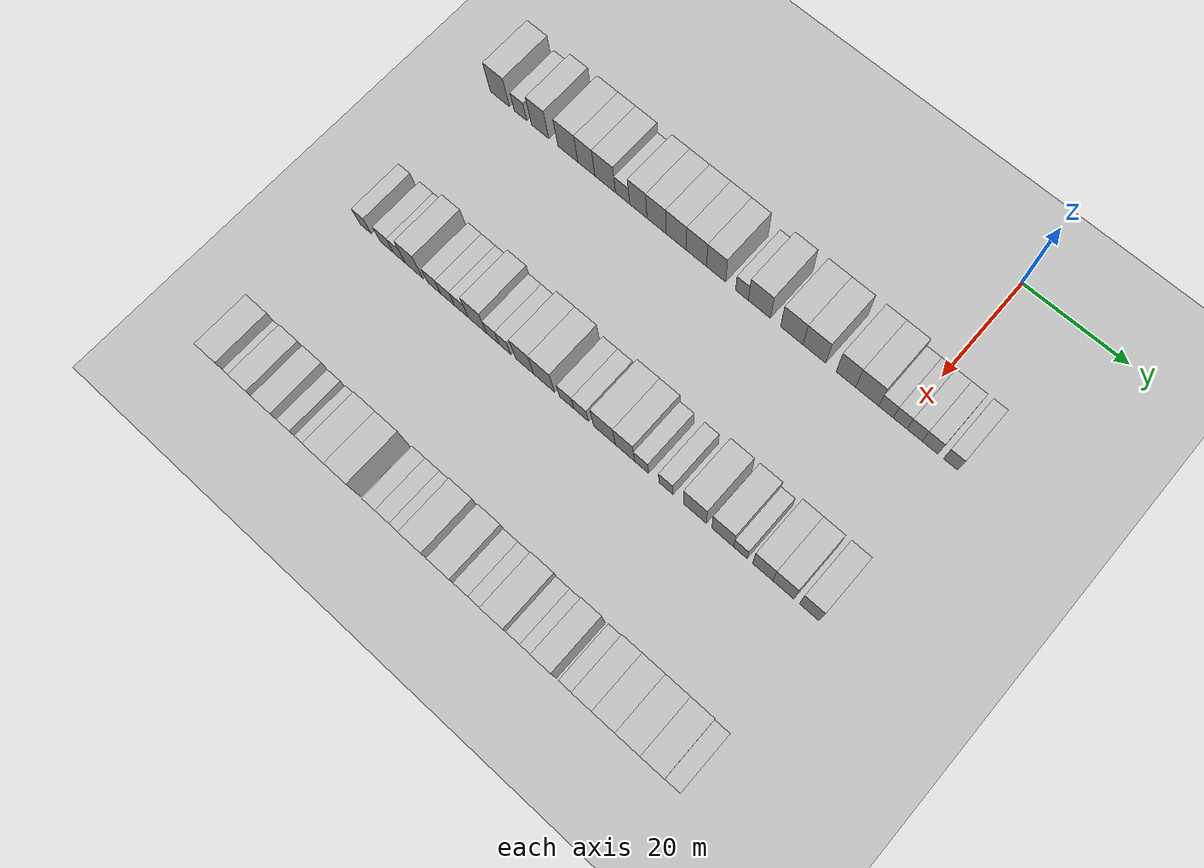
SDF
<sdf version="1.6">
 <world name="default">
  <include><name>ground_plane_1</name><uri>model://HANNAS_ground_plane</uri></include>
  <include>
   <name>ground_plane_2</name>
   <uri>model://HANNAS_ground_plane</uri>
   <pose>100 0 0  0 0 0</pose>
  </include>
  <model name="building_47">
   <static>1</static>
   <pose>25.0000 -81.6204 0 0.000000 0.000000 0.000000</pose>
   <link name="link">
    <pose>0 0 4.50 0 0 0</pose>
    <collision name="collision"><geometry><box><size>10.0000 4.2564 9.0000</size></box></geometry></collision>
    <visual name="visual">
     <cast_shadows>0</cast_shadows>
     <geometry><box><size>10.0000 4.2564 9.0000</size></box></geometry>
     <material>
      <script>
       <uri>model://HANNAS_wall/materials/scripts</uri>
       <uri>model://HANNAS_wall/materials/textures</uri>
       <name>vrc/HANNAS_wall</name>
      </script>
     </material>
    </visual>
   </link>
  </model>
  <model name="building_48">
   <static>1</static>
   <pose>25.0000 -77.0894 0 0.000000 0.000000 0.000000</pose>
   <link name="link">
    <pose>0 0 3.00 0 0 0</pose>
    <collision name="collision"><geometry><box><size>10.0000 2.8056 6.0000</size></box></geometry></collision>
    <visual name="visual">
     <cast_shadows>0</cast_shadows>
     <geometry><box><size>10.0000 2.8056 6.0000</size></box></geometry>
     <material>
      <script>
       <uri>model://HANNAS_wall/materials/scripts</uri>
       <uri>model://HANNAS_wall/materials/textures</uri>
       <name>vrc/HANNAS_wall</name>
      </script>
     </material>
    </visual>
   </link>
  </model>
  <model name="building_49">
   <static>1</static>
   <pose>25.0000 -72.8081 0 0.000000 0.000000 0.000000</pose>
   <link name="link">
    <pose>0 0 4.50 0 0 0</pose>
    <collision name="collision"><geometry><box><size>10.0000 3.7571 9.0000</size></box></geometry></collision>
    <visual name="visual">
     <cast_shadows>0</cast_shadows>
     <geometry><box><size>10.0000 3.7571 9.0000</size></box></geometry>
     <material>
      <script>
       <uri>model://HANNAS_wall/materials/scripts</uri>
       <uri>model://HANNAS_wall/materials/textures</uri>
       <name>vrc/HANNAS_wall</name>
      </script>
     </material>
    </visual>
   </link>
  </model>
  <model name="building_50">
   <static>1</static>
   <pose>25.0000 -66.7980 0 0.000000 0.000000 0.000000</pose>
   <link name="link">
    <pose>0 0 4.50 0 0 0</pose>
    <collision name="collision"><geometry><box><size>10.0000 4.2631 9.0000</size></box></geometry></collision>
    <visual name="visual">
     <cast_shadows>0</cast_shadows>
     <geometry><box><size>10.0000 4.2631 9.0000</size></box></geometry>
     <material>
      <script>
       <uri>model://HANNAS_wall/materials/scripts</uri>
       <uri>model://HANNAS_wall/materials/textures</uri>
       <name>vrc/HANNAS_wall</name>
      </script>
     </material>
    </visual>
   </link>
  </model>
  <model name="building_51">
   <static>1</static>
   <pose>25.0000 -62.8518 0 0.000000 0.000000 0.000000</pose>
   <link name="link">
    <pose>0 0 4.50 0 0 0</pose>
    <collision name="collision"><geometry><box><size>10.0000 3.6294 9.0000</size></box></geometry></collision>
    <visual name="visual">
     <cast_shadows>0</cast_shadows>
     <geometry><box><size>10.0000 3.6294 9.0000</size></box></geometry>
     <material>
      <script>
       <uri>model://HANNAS_wall/materials/scripts</uri>
       <uri>model://HANNAS_wall/materials/textures</uri>
       <name>vrc/HANNAS_wall</name>
      </script>
     </material>
    </visual>
   </link>
  </model>
  <model name="building_52">
   <static>1</static>
   <pose>25.0000 -58.8679 0 0.000000 0.000000 0.000000</pose>
   <link name="link">
    <pose>0 0 4.50 0 0 0</pose>
    <collision name="collision"><geometry><box><size>10.0000 4.3384 9.0000</size></box></geometry></collision>
    <visual name="visual">
     <cast_shadows>0</cast_shadows>
     <geometry><box><size>10.0000 4.3384 9.0000</size></box></geometry>
     <material>
      <script>
       <uri>model://HANNAS_wall/materials/scripts</uri>
       <uri>model://HANNAS_wall/materials/textures</uri>
       <name>vrc/HANNAS_wall</name>
      </script>
     </material>
    </visual>
   </link>
  </model>
  <model name="building_53">
   <static>1</static>
   <pose>25.0000 -55.2191 0 0.000000 0.000000 0.000000</pose>
   <link name="link">
    <pose>0 0 3.00 0 0 0</pose>
    <collision name="collision"><geometry><box><size>10.0000 2.9593 6.0000</size></box></geometry></collision>
    <visual name="visual">
     <cast_shadows>0</cast_shadows>
     <geometry><box><size>10.0000 2.9593 6.0000</size></box></geometry>
     <material>
      <script>
       <uri>model://HANNAS_wall/materials/scripts</uri>
       <uri>model://HANNAS_wall/materials/textures</uri>
       <name>vrc/HANNAS_wall</name>
      </script>
     </material>
    </visual>
   </link>
  </model>
  <model name="building_54">
   <static>1</static>
   <pose>25.0000 -51.9248 0 0.000000 0.000000 0.000000</pose>
   <link name="link">
    <pose>0 0 4.50 0 0 0</pose>
    <collision name="collision"><geometry><box><size>10.0000 3.6293 9.0000</size></box></geometry></collision>
    <visual name="visual">
     <cast_shadows>0</cast_shadows>
     <geometry><box><size>10.0000 3.6293 9.0000</size></box></geometry>
     <material>
      <script>
       <uri>model://HANNAS_wall/materials/scripts</uri>
       <uri>model://HANNAS_wall/materials/textures</uri>
       <name>vrc/HANNAS_wall</name>
      </script>
     </material>
    </visual>
   </link>
  </model>
  <model name="building_55">
   <static>1</static>
   <pose>25.0000 -48.1286 0 0.000000 0.000000 0.000000</pose>
   <link name="link">
    <pose>0 0 4.50 0 0 0</pose>
    <collision name="collision"><geometry><box><size>10.0000 3.9632 9.0000</size></box></geometry></collision>
    <visual name="visual">
     <cast_shadows>0</cast_shadows>
     <geometry><box><size>10.0000 3.9632 9.0000</size></box></geometry>
     <material>
      <script>
       <uri>model://HANNAS_wall/materials/scripts</uri>
       <uri>model://HANNAS_wall/materials/textures</uri>
       <name>vrc/HANNAS_wall</name>
      </script>
     </material>
    </visual>
   </link>
  </model>
  <model name="building_56">
   <static>1</static>
   <pose>25.0000 -44.0574 0 0.000000 0.000000 0.000000</pose>
   <link name="link">
    <pose>0 0 4.50 0 0 0</pose>
    <collision name="collision"><geometry><box><size>10.0000 4.1792 9.0000</size></box></geometry></collision>
    <visual name="visual">
     <cast_shadows>0</cast_shadows>
     <geometry><box><size>10.0000 4.1792 9.0000</size></box></geometry>
     <material>
      <script>
       <uri>model://HANNAS_wall/materials/scripts</uri>
       <uri>model://HANNAS_wall/materials/textures</uri>
       <name>vrc/HANNAS_wall</name>
      </script>
     </material>
    </visual>
   </link>
  </model>
  <model name="building_57">
   <static>1</static>
   <pose>25.0000 -39.9187 0 0.000000 0.000000 0.000000</pose>
   <link name="link">
    <pose>0 0 4.50 0 0 0</pose>
    <collision name="collision"><geometry><box><size>10.0000 4.0983 9.0000</size></box></geometry></collision>
    <visual name="visual">
     <cast_shadows>0</cast_shadows>
     <geometry><box><size>10.0000 4.0983 9.0000</size></box></geometry>
     <material>
      <script>
       <uri>model://HANNAS_wall/materials/scripts</uri>
       <uri>model://HANNAS_wall/materials/textures</uri>
       <name>vrc/HANNAS_wall</name>
      </script>
     </material>
    </visual>
   </link>
  </model>
  <model name="building_58">
   <static>1</static>
   <pose>25.0000 -35.9599 0 0.000000 0.000000 0.000000</pose>
   <link name="link">
    <pose>0 0 4.50 0 0 0</pose>
    <collision name="collision"><geometry><box><size>10.0000 3.8193 9.0000</size></box></geometry></collision>
    <visual name="visual">
     <cast_shadows>0</cast_shadows>
     <geometry><box><size>10.0000 3.8193 9.0000</size></box></geometry>
     <material>
      <script>
       <uri>model://HANNAS_wall/materials/scripts</uri>
       <uri>model://HANNAS_wall/materials/textures</uri>
       <name>vrc/HANNAS_wall</name>
      </script>
     </material>
    </visual>
   </link>
  </model>
  <model name="building_59">
   <static>1</static>
   <pose>25.0000 -30.7808 0 0.000000 0.000000 0.000000</pose>
   <link name="link">
    <pose>0 0 3.00 0 0 0</pose>
    <collision name="collision"><geometry><box><size>10.0000 2.5389 6.0000</size></box></geometry></collision>
    <visual name="visual">
     <cast_shadows>0</cast_shadows>
     <geometry><box><size>10.0000 2.5389 6.0000</size></box></geometry>
     <material>
      <script>
       <uri>model://HANNAS_wall/materials/scripts</uri>
       <uri>model://HANNAS_wall/materials/textures</uri>
       <name>vrc/HANNAS_wall</name>
      </script>
     </material>
    </visual>
   </link>
  </model>
  <model name="building_60">
   <static>1</static>
   <pose>25.0000 -27.3280 0 0.000000 0.000000 0.000000</pose>
   <link name="link">
    <pose>0 0 4.50 0 0 0</pose>
    <collision name="collision"><geometry><box><size>10.0000 4.3667 9.0000</size></box></geometry></collision>
    <visual name="visual">
     <cast_shadows>0</cast_shadows>
     <geometry><box><size>10.0000 4.3667 9.0000</size></box></geometry>
     <material>
      <script>
       <uri>model://HANNAS_wall/materials/scripts</uri>
       <uri>model://HANNAS_wall/materials/textures</uri>
       <name>vrc/HANNAS_wall</name>
      </script>
     </material>
    </visual>
   </link>
  </model>
  <model name="building_61">
   <static>1</static>
   <pose>25.0000 -20.9555 0 0.000000 0.000000 0.000000</pose>
   <link name="link">
    <pose>0 0 4.50 0 0 0</pose>
    <collision name="collision"><geometry><box><size>10.0000 4.3783 9.0000</size></box></geometry></collision>
    <visual name="visual">
     <cast_shadows>0</cast_shadows>
     <geometry><box><size>10.0000 4.3783 9.0000</size></box></geometry>
     <material>
      <script>
       <uri>model://HANNAS_wall/materials/scripts</uri>
       <uri>model://HANNAS_wall/materials/textures</uri>
       <name>vrc/HANNAS_wall</name>
      </script>
     </material>
    </visual>
   </link>
  </model>
  <model name="building_62">
   <static>1</static>
   <pose>25.0000 -16.5582 0 0.000000 0.000000 0.000000</pose>
   <link name="link">
    <pose>0 0 4.50 0 0 0</pose>
    <collision name="collision"><geometry><box><size>10.0000 4.4162 9.0000</size></box></geometry></collision>
    <visual name="visual">
     <cast_shadows>0</cast_shadows>
     <geometry><box><size>10.0000 4.4162 9.0000</size></box></geometry>
     <material>
      <script>
       <uri>model://HANNAS_wall/materials/scripts</uri>
       <uri>model://HANNAS_wall/materials/textures</uri>
       <name>vrc/HANNAS_wall</name>
      </script>
     </material>
    </visual>
   </link>
  </model>
  <model name="building_63">
   <static>1</static>
   <pose>25.0000 -10.4904 0 0.000000 0.000000 0.000000</pose>
   <link name="link">
    <pose>0 0 4.50 0 0 0</pose>
    <collision name="collision"><geometry><box><size>10.0000 3.7194 9.0000</size></box></geometry></collision>
    <visual name="visual">
     <cast_shadows>0</cast_shadows>
     <geometry><box><size>10.0000 3.7194 9.0000</size></box></geometry>
     <material>
      <script>
       <uri>model://HANNAS_wall/materials/scripts</uri>
       <uri>model://HANNAS_wall/materials/textures</uri>
       <name>vrc/HANNAS_wall</name>
      </script>
     </material>
    </visual>
   </link>
  </model>
  <model name="building_64">
   <static>1</static>
   <pose>25.0000 -6.4388 0 0.000000 0.000000 0.000000</pose>
   <link name="link">
    <pose>0 0 4.50 0 0 0</pose>
    <collision name="collision"><geometry><box><size>10.0000 4.3837 9.0000</size></box></geometry></collision>
    <visual name="visual">
     <cast_shadows>0</cast_shadows>
     <geometry><box><size>10.0000 4.3837 9.0000</size></box></geometry>
     <material>
      <script>
       <uri>model://HANNAS_wall/materials/scripts</uri>
       <uri>model://HANNAS_wall/materials/textures</uri>
       <name>vrc/HANNAS_wall</name>
      </script>
     </material>
    </visual>
   </link>
  </model>
  <model name="building_65">
   <static>1</static>
   <pose>25.0000 -2.8826 0 0.000000 0.000000 0.000000</pose>
   <link name="link">
    <pose>0 0 3.00 0 0 0</pose>
    <collision name="collision"><geometry><box><size>10.0000 2.7288 6.0000</size></box></geometry></collision>
    <visual name="visual">
     <cast_shadows>0</cast_shadows>
     <geometry><box><size>10.0000 2.7288 6.0000</size></box></geometry>
     <material>
      <script>
       <uri>model://HANNAS_wall/materials/scripts</uri>
       <uri>model://HANNAS_wall/materials/textures</uri>
       <name>vrc/HANNAS_wall</name>
      </script>
     </material>
    </visual>
   </link>
  </model>
  <model name="building_66">
   <static>1</static>
   <pose>25.0000 -0.2152 0 0.000000 0.000000 0.000000</pose>
   <link name="link">
    <pose>0 0 3.00 0 0 0</pose>
    <collision name="collision"><geometry><box><size>10.0000 2.6060 6.0000</size></box></geometry></collision>
    <visual name="visual">
     <cast_shadows>0</cast_shadows>
     <geometry><box><size>10.0000 2.6060 6.0000</size></box></geometry>
     <material>
      <script>
       <uri>model://HANNAS_wall/materials/scripts</uri>
       <uri>model://HANNAS_wall/materials/textures</uri>
       <name>vrc/HANNAS_wall</name>
      </script>
     </material>
    </visual>
   </link>
  </model>
  <model name="building_67">
   <static>1</static>
   <pose>25.0000 2.5015 0 0.000000 0.000000 0.000000</pose>
   <link name="link">
    <pose>0 0 3.00 0 0 0</pose>
    <collision name="collision"><geometry><box><size>10.0000 2.8276 6.0000</size></box></geometry></collision>
    <visual name="visual">
     <cast_shadows>0</cast_shadows>
     <geometry><box><size>10.0000 2.8276 6.0000</size></box></geometry>
     <material>
      <script>
       <uri>model://HANNAS_wall/materials/scripts</uri>
       <uri>model://HANNAS_wall/materials/textures</uri>
       <name>vrc/HANNAS_wall</name>
      </script>
     </material>
    </visual>
   </link>
  </model>
  <model name="building_68">
   <static>1</static>
   <pose>25.0000 5.3743 0 0.000000 0.000000 0.000000</pose>
   <link name="link">
    <pose>0 0 3.00 0 0 0</pose>
    <collision name="collision"><geometry><box><size>10.0000 2.9180 6.0000</size></box></geometry></collision>
    <visual name="visual">
     <cast_shadows>0</cast_shadows>
     <geometry><box><size>10.0000 2.9180 6.0000</size></box></geometry>
     <material>
      <script>
       <uri>model://HANNAS_wall/materials/scripts</uri>
       <uri>model://HANNAS_wall/materials/textures</uri>
       <name>vrc/HANNAS_wall</name>
      </script>
     </material>
    </visual>
   </link>
  </model>
  <model name="building_69">
   <static>1</static>
   <pose>25.0000 9.1517 0 0.000000 0.000000 0.000000</pose>
   <link name="link">
    <pose>0 0 3.00 0 0 0</pose>
    <collision name="collision"><geometry><box><size>10.0000 2.6368 6.0000</size></box></geometry></collision>
    <visual name="visual">
     <cast_shadows>0</cast_shadows>
     <geometry><box><size>10.0000 2.6368 6.0000</size></box></geometry>
     <material>
      <script>
       <uri>model://HANNAS_wall/materials/scripts</uri>
       <uri>model://HANNAS_wall/materials/textures</uri>
       <name>vrc/HANNAS_wall</name>
      </script>
     </material>
    </visual>
   </link>
  </model>
  <model name="building_191">
   <static>1</static>
   <pose>55.0000 -81.5571 0 0.000000 0.000000 0.000000</pose>
   <link name="link">
    <pose>0 0 3.00 0 0 0</pose>
    <collision name="collision"><geometry><box><size>10.0000 2.5150 6.0000</size></box></geometry></collision>
    <visual name="visual">
     <cast_shadows>0</cast_shadows>
     <geometry><box><size>10.0000 2.5150 6.0000</size></box></geometry>
     <material>
      <script>
       <uri>model://HANNAS_wall/materials/scripts</uri>
       <uri>model://HANNAS_wall/materials/textures</uri>
       <name>vrc/HANNAS_wall</name>
      </script>
     </material>
    </visual>
   </link>
  </model>
  <model name="building_192">
   <static>1</static>
   <pose>55.0000 -76.8362 0 0.000000 0.000000 0.000000</pose>
   <link name="link">
    <pose>0 0 3.00 0 0 0</pose>
    <collision name="collision"><geometry><box><size>10.0000 2.9268 6.0000</size></box></geometry></collision>
    <visual name="visual">
     <cast_shadows>0</cast_shadows>
     <geometry><box><size>10.0000 2.9268 6.0000</size></box></geometry>
     <material>
      <script>
       <uri>model://HANNAS_wall/materials/scripts</uri>
       <uri>model://HANNAS_wall/materials/textures</uri>
       <name>vrc/HANNAS_wall</name>
      </script>
     </material>
    </visual>
   </link>
  </model>
  <model name="building_193">
   <static>1</static>
   <pose>55.0000 -74.0799 0 0.000000 0.000000 0.000000</pose>
   <link name="link">
    <pose>0 0 3.00 0 0 0</pose>
    <collision name="collision"><geometry><box><size>10.0000 2.5858 6.0000</size></box></geometry></collision>
    <visual name="visual">
     <cast_shadows>0</cast_shadows>
     <geometry><box><size>10.0000 2.5858 6.0000</size></box></geometry>
     <material>
      <script>
       <uri>model://HANNAS_wall/materials/scripts</uri>
       <uri>model://HANNAS_wall/materials/textures</uri>
       <name>vrc/HANNAS_wall</name>
      </script>
     </material>
    </visual>
   </link>
  </model>
  <model name="building_194">
   <static>1</static>
   <pose>55.0000 -70.9197 0 0.000000 0.000000 0.000000</pose>
   <link name="link">
    <pose>0 0 4.50 0 0 0</pose>
    <collision name="collision"><geometry><box><size>10.0000 3.7346 9.0000</size></box></geometry></collision>
    <visual name="visual">
     <cast_shadows>0</cast_shadows>
     <geometry><box><size>10.0000 3.7346 9.0000</size></box></geometry>
     <material>
      <script>
       <uri>model://HANNAS_wall/materials/scripts</uri>
       <uri>model://HANNAS_wall/materials/textures</uri>
       <name>vrc/HANNAS_wall</name>
      </script>
     </material>
    </visual>
   </link>
  </model>
  <model name="building_195">
   <static>1</static>
   <pose>55.0000 -66.6272 0 0.000000 0.000000 0.000000</pose>
   <link name="link">
    <pose>0 0 3.00 0 0 0</pose>
    <collision name="collision"><geometry><box><size>10.0000 2.8502 6.0000</size></box></geometry></collision>
    <visual name="visual">
     <cast_shadows>0</cast_shadows>
     <geometry><box><size>10.0000 2.8502 6.0000</size></box></geometry>
     <material>
      <script>
       <uri>model://HANNAS_wall/materials/scripts</uri>
       <uri>model://HANNAS_wall/materials/textures</uri>
       <name>vrc/HANNAS_wall</name>
      </script>
     </material>
    </visual>
   </link>
  </model>
  <model name="building_196">
   <static>1</static>
   <pose>55.0000 -63.7630 0 0.000000 0.000000 0.000000</pose>
   <link name="link">
    <pose>0 0 3.00 0 0 0</pose>
    <collision name="collision"><geometry><box><size>10.0000 2.8782 6.0000</size></box></geometry></collision>
    <visual name="visual">
     <cast_shadows>0</cast_shadows>
     <geometry><box><size>10.0000 2.8782 6.0000</size></box></geometry>
     <material>
      <script>
       <uri>model://HANNAS_wall/materials/scripts</uri>
       <uri>model://HANNAS_wall/materials/textures</uri>
       <name>vrc/HANNAS_wall</name>
      </script>
     </material>
    </visual>
   </link>
  </model>
  <model name="building_197">
   <static>1</static>
   <pose>55.0000 -60.8472 0 0.000000 0.000000 0.000000</pose>
   <link name="link">
    <pose>0 0 3.00 0 0 0</pose>
    <collision name="collision"><geometry><box><size>10.0000 2.9534 6.0000</size></box></geometry></collision>
    <visual name="visual">
     <cast_shadows>0</cast_shadows>
     <geometry><box><size>10.0000 2.9534 6.0000</size></box></geometry>
     <material>
      <script>
       <uri>model://HANNAS_wall/materials/scripts</uri>
       <uri>model://HANNAS_wall/materials/textures</uri>
       <name>vrc/HANNAS_wall</name>
      </script>
     </material>
    </visual>
   </link>
  </model>
  <model name="building_198">
   <static>1</static>
   <pose>55.0000 -57.4483 0 0.000000 0.000000 0.000000</pose>
   <link name="link">
    <pose>0 0 4.50 0 0 0</pose>
    <collision name="collision"><geometry><box><size>10.0000 3.8444 9.0000</size></box></geometry></collision>
    <visual name="visual">
     <cast_shadows>0</cast_shadows>
     <geometry><box><size>10.0000 3.8444 9.0000</size></box></geometry>
     <material>
      <script>
       <uri>model://HANNAS_wall/materials/scripts</uri>
       <uri>model://HANNAS_wall/materials/textures</uri>
       <name>vrc/HANNAS_wall</name>
      </script>
     </material>
    </visual>
   </link>
  </model>
  <model name="building_199">
   <static>1</static>
   <pose>55.0000 -54.2458 0 0.000000 0.000000 0.000000</pose>
   <link name="link">
    <pose>0 0 3.00 0 0 0</pose>
    <collision name="collision"><geometry><box><size>10.0000 2.5604 6.0000</size></box></geometry></collision>
    <visual name="visual">
     <cast_shadows>0</cast_shadows>
     <geometry><box><size>10.0000 2.5604 6.0000</size></box></geometry>
     <material>
      <script>
       <uri>model://HANNAS_wall/materials/scripts</uri>
       <uri>model://HANNAS_wall/materials/textures</uri>
       <name>vrc/HANNAS_wall</name>
      </script>
     </material>
    </visual>
   </link>
  </model>
  <model name="building_200">
   <static>1</static>
   <pose>55.0000 -51.7610 0 0.000000 0.000000 0.000000</pose>
   <link name="link">
    <pose>0 0 3.00 0 0 0</pose>
    <collision name="collision"><geometry><box><size>10.0000 2.4092 6.0000</size></box></geometry></collision>
    <visual name="visual">
     <cast_shadows>0</cast_shadows>
     <geometry><box><size>10.0000 2.4092 6.0000</size></box></geometry>
     <material>
      <script>
       <uri>model://HANNAS_wall/materials/scripts</uri>
       <uri>model://HANNAS_wall/materials/textures</uri>
       <name>vrc/HANNAS_wall</name>
      </script>
     </material>
    </visual>
   </link>
  </model>
  <model name="building_201">
   <static>1</static>
   <pose>55.0000 -47.7189 0 0.000000 0.000000 0.000000</pose>
   <link name="link">
    <pose>0 0 4.50 0 0 0</pose>
    <collision name="collision"><geometry><box><size>10.0000 3.6751 9.0000</size></box></geometry></collision>
    <visual name="visual">
     <cast_shadows>0</cast_shadows>
     <geometry><box><size>10.0000 3.6751 9.0000</size></box></geometry>
     <material>
      <script>
       <uri>model://HANNAS_wall/materials/scripts</uri>
       <uri>model://HANNAS_wall/materials/textures</uri>
       <name>vrc/HANNAS_wall</name>
      </script>
     </material>
    </visual>
   </link>
  </model>
  <model name="building_202">
   <static>1</static>
   <pose>55.0000 -43.7553 0 0.000000 0.000000 0.000000</pose>
   <link name="link">
    <pose>0 0 4.50 0 0 0</pose>
    <collision name="collision"><geometry><box><size>10.0000 4.2521 9.0000</size></box></geometry></collision>
    <visual name="visual">
     <cast_shadows>0</cast_shadows>
     <geometry><box><size>10.0000 4.2521 9.0000</size></box></geometry>
     <material>
      <script>
       <uri>model://HANNAS_wall/materials/scripts</uri>
       <uri>model://HANNAS_wall/materials/textures</uri>
       <name>vrc/HANNAS_wall</name>
      </script>
     </material>
    </visual>
   </link>
  </model>
  <model name="building_203">
   <static>1</static>
   <pose>55.0000 -39.1882 0 0.000000 0.000000 0.000000</pose>
   <link name="link">
    <pose>0 0 3.00 0 0 0</pose>
    <collision name="collision"><geometry><box><size>10.0000 2.8820 6.0000</size></box></geometry></collision>
    <visual name="visual">
     <cast_shadows>0</cast_shadows>
     <geometry><box><size>10.0000 2.8820 6.0000</size></box></geometry>
     <material>
      <script>
       <uri>model://HANNAS_wall/materials/scripts</uri>
       <uri>model://HANNAS_wall/materials/textures</uri>
       <name>vrc/HANNAS_wall</name>
      </script>
     </material>
    </visual>
   </link>
  </model>
  <model name="building_204">
   <static>1</static>
   <pose>55.0000 -36.2846 0 0.000000 0.000000 0.000000</pose>
   <link name="link">
    <pose>0 0 3.00 0 0 0</pose>
    <collision name="collision"><geometry><box><size>10.0000 2.9252 6.0000</size></box></geometry></collision>
    <visual name="visual">
     <cast_shadows>0</cast_shadows>
     <geometry><box><size>10.0000 2.9252 6.0000</size></box></geometry>
     <material>
      <script>
       <uri>model://HANNAS_wall/materials/scripts</uri>
       <uri>model://HANNAS_wall/materials/textures</uri>
       <name>vrc/HANNAS_wall</name>
      </script>
     </material>
    </visual>
   </link>
  </model>
  <model name="building_205">
   <static>1</static>
   <pose>55.0000 -31.6635 0 0.000000 0.000000 0.000000</pose>
   <link name="link">
    <pose>0 0 4.50 0 0 0</pose>
    <collision name="collision"><geometry><box><size>10.0000 4.3172 9.0000</size></box></geometry></collision>
    <visual name="visual">
     <cast_shadows>0</cast_shadows>
     <geometry><box><size>10.0000 4.3172 9.0000</size></box></geometry>
     <material>
      <script>
       <uri>model://HANNAS_wall/materials/scripts</uri>
       <uri>model://HANNAS_wall/materials/textures</uri>
       <name>vrc/HANNAS_wall</name>
      </script>
     </material>
    </visual>
   </link>
  </model>
  <model name="building_206">
   <static>1</static>
   <pose>55.0000 -27.6043 0 0.000000 0.000000 0.000000</pose>
   <link name="link">
    <pose>0 0 4.50 0 0 0</pose>
    <collision name="collision"><geometry><box><size>10.0000 3.8011 9.0000</size></box></geometry></collision>
    <visual name="visual">
     <cast_shadows>0</cast_shadows>
     <geometry><box><size>10.0000 3.8011 9.0000</size></box></geometry>
     <material>
      <script>
       <uri>model://HANNAS_wall/materials/scripts</uri>
       <uri>model://HANNAS_wall/materials/textures</uri>
       <name>vrc/HANNAS_wall</name>
      </script>
     </material>
    </visual>
   </link>
  </model>
  <model name="building_207">
   <static>1</static>
   <pose>55.0000 -24.3445 0 0.000000 0.000000 0.000000</pose>
   <link name="link">
    <pose>0 0 3.00 0 0 0</pose>
    <collision name="collision"><geometry><box><size>10.0000 2.7186 6.0000</size></box></geometry></collision>
    <visual name="visual">
     <cast_shadows>0</cast_shadows>
     <geometry><box><size>10.0000 2.7186 6.0000</size></box></geometry>
     <material>
      <script>
       <uri>model://HANNAS_wall/materials/scripts</uri>
       <uri>model://HANNAS_wall/materials/textures</uri>
       <name>vrc/HANNAS_wall</name>
      </script>
     </material>
    </visual>
   </link>
  </model>
  <model name="building_208">
   <static>1</static>
   <pose>55.0000 -19.6292 0 0.000000 0.000000 0.000000</pose>
   <link name="link">
    <pose>0 0 3.00 0 0 0</pose>
    <collision name="collision"><geometry><box><size>10.0000 2.7120 6.0000</size></box></geometry></collision>
    <visual name="visual">
     <cast_shadows>0</cast_shadows>
     <geometry><box><size>10.0000 2.7120 6.0000</size></box></geometry>
     <material>
      <script>
       <uri>model://HANNAS_wall/materials/scripts</uri>
       <uri>model://HANNAS_wall/materials/textures</uri>
       <name>vrc/HANNAS_wall</name>
      </script>
     </material>
    </visual>
   </link>
  </model>
  <model name="building_209">
   <static>1</static>
   <pose>55.0000 -14.0733 0 0.000000 0.000000 0.000000</pose>
   <link name="link">
    <pose>0 0 4.50 0 0 0</pose>
    <collision name="collision"><geometry><box><size>10.0000 4.3997 9.0000</size></box></geometry></collision>
    <visual name="visual">
     <cast_shadows>0</cast_shadows>
     <geometry><box><size>10.0000 4.3997 9.0000</size></box></geometry>
     <material>
      <script>
       <uri>model://HANNAS_wall/materials/scripts</uri>
       <uri>model://HANNAS_wall/materials/textures</uri>
       <name>vrc/HANNAS_wall</name>
      </script>
     </material>
    </visual>
   </link>
  </model>
  <model name="building_210">
   <static>1</static>
   <pose>55.0000 -8.8160 0 0.000000 0.000000 0.000000</pose>
   <link name="link">
    <pose>0 0 4.50 0 0 0</pose>
    <collision name="collision"><geometry><box><size>10.0000 4.1148 9.0000</size></box></geometry></collision>
    <visual name="visual">
     <cast_shadows>0</cast_shadows>
     <geometry><box><size>10.0000 4.1148 9.0000</size></box></geometry>
     <material>
      <script>
       <uri>model://HANNAS_wall/materials/scripts</uri>
       <uri>model://HANNAS_wall/materials/textures</uri>
       <name>vrc/HANNAS_wall</name>
      </script>
     </material>
    </visual>
   </link>
  </model>
  <model name="building_211">
   <static>1</static>
   <pose>55.0000 -5.4858 0 0.000000 0.000000 0.000000</pose>
   <link name="link">
    <pose>0 0 3.00 0 0 0</pose>
    <collision name="collision"><geometry><box><size>10.0000 2.5456 6.0000</size></box></geometry></collision>
    <visual name="visual">
     <cast_shadows>0</cast_shadows>
     <geometry><box><size>10.0000 2.5456 6.0000</size></box></geometry>
     <material>
      <script>
       <uri>model://HANNAS_wall/materials/scripts</uri>
       <uri>model://HANNAS_wall/materials/textures</uri>
       <name>vrc/HANNAS_wall</name>
      </script>
     </material>
    </visual>
   </link>
  </model>
  <model name="building_212">
   <static>1</static>
   <pose>55.0000 -1.3410 0 0.000000 0.000000 0.000000</pose>
   <link name="link">
    <pose>0 0 4.50 0 0 0</pose>
    <collision name="collision"><geometry><box><size>10.0000 3.7441 9.0000</size></box></geometry></collision>
    <visual name="visual">
     <cast_shadows>0</cast_shadows>
     <geometry><box><size>10.0000 3.7441 9.0000</size></box></geometry>
     <material>
      <script>
       <uri>model://HANNAS_wall/materials/scripts</uri>
       <uri>model://HANNAS_wall/materials/textures</uri>
       <name>vrc/HANNAS_wall</name>
      </script>
     </material>
    </visual>
   </link>
  </model>
  <model name="building_213">
   <static>1</static>
   <pose>55.0000 2.4802 0 0.000000 0.000000 0.000000</pose>
   <link name="link">
    <pose>0 0 4.50 0 0 0</pose>
    <collision name="collision"><geometry><box><size>10.0000 3.8981 9.0000</size></box></geometry></collision>
    <visual name="visual">
     <cast_shadows>0</cast_shadows>
     <geometry><box><size>10.0000 3.8981 9.0000</size></box></geometry>
     <material>
      <script>
       <uri>model://HANNAS_wall/materials/scripts</uri>
       <uri>model://HANNAS_wall/materials/textures</uri>
       <name>vrc/HANNAS_wall</name>
      </script>
     </material>
    </visual>
   </link>
  </model>
  <model name="building_214">
   <static>1</static>
   <pose>55.0000 7.2455 0 0.000000 0.000000 0.000000</pose>
   <link name="link">
    <pose>0 0 4.50 0 0 0</pose>
    <collision name="collision"><geometry><box><size>10.0000 3.6325 9.0000</size></box></geometry></collision>
    <visual name="visual">
     <cast_shadows>0</cast_shadows>
     <geometry><box><size>10.0000 3.6325 9.0000</size></box></geometry>
     <material>
      <script>
       <uri>model://HANNAS_wall/materials/scripts</uri>
       <uri>model://HANNAS_wall/materials/textures</uri>
       <name>vrc/HANNAS_wall</name>
      </script>
     </material>
    </visual>
   </link>
  </model>
  <model name="building_337">
   <static>1</static>
   <pose>85.0000 -80.7573 0 0.000000 0.000000 0.000000</pose>
   <link name="link">
    <pose>0 0 4.50 0 0 0</pose>
    <collision name="collision"><geometry><box><size>10.0000 4.3940 9.0000</size></box></geometry></collision>
    <visual name="visual">
     <cast_shadows>0</cast_shadows>
     <geometry><box><size>10.0000 4.3940 9.0000</size></box></geometry>
     <material>
      <script>
       <uri>model://HANNAS_wall/materials/scripts</uri>
       <uri>model://HANNAS_wall/materials/textures</uri>
       <name>vrc/HANNAS_wall</name>
      </script>
     </material>
    </visual>
   </link>
  </model>
  <model name="building_338">
   <static>1</static>
   <pose>85.0000 -77.2545 0 0.000000 0.000000 0.000000</pose>
   <link name="link">
    <pose>0 0 3.00 0 0 0</pose>
    <collision name="collision"><geometry><box><size>10.0000 2.6116 6.0000</size></box></geometry></collision>
    <visual name="visual">
     <cast_shadows>0</cast_shadows>
     <geometry><box><size>10.0000 2.6116 6.0000</size></box></geometry>
     <material>
      <script>
       <uri>model://HANNAS_wall/materials/scripts</uri>
       <uri>model://HANNAS_wall/materials/textures</uri>
       <name>vrc/HANNAS_wall</name>
      </script>
     </material>
    </visual>
   </link>
  </model>
  <model name="building_339">
   <static>1</static>
   <pose>85.0000 -74.0384 0 0.000000 0.000000 0.000000</pose>
   <link name="link">
    <pose>0 0 4.50 0 0 0</pose>
    <collision name="collision"><geometry><box><size>10.0000 3.8207 9.0000</size></box></geometry></collision>
    <visual name="visual">
     <cast_shadows>0</cast_shadows>
     <geometry><box><size>10.0000 3.8207 9.0000</size></box></geometry>
     <material>
      <script>
       <uri>model://HANNAS_wall/materials/scripts</uri>
       <uri>model://HANNAS_wall/materials/textures</uri>
       <name>vrc/HANNAS_wall</name>
      </script>
     </material>
    </visual>
   </link>
  </model>
  <model name="building_340">
   <static>1</static>
   <pose>85.0000 -69.1573 0 0.000000 0.000000 0.000000</pose>
   <link name="link">
    <pose>0 0 4.50 0 0 0</pose>
    <collision name="collision"><geometry><box><size>10.0000 3.9415 9.0000</size></box></geometry></collision>
    <visual name="visual">
     <cast_shadows>0</cast_shadows>
     <geometry><box><size>10.0000 3.9415 9.0000</size></box></geometry>
     <material>
      <script>
       <uri>model://HANNAS_wall/materials/scripts</uri>
       <uri>model://HANNAS_wall/materials/textures</uri>
       <name>vrc/HANNAS_wall</name>
      </script>
     </material>
    </visual>
   </link>
  </model>
  <model name="building_341">
   <static>1</static>
   <pose>85.0000 -65.8444 0 0.000000 0.000000 0.000000</pose>
   <link name="link">
    <pose>0 0 3.00 0 0 0</pose>
    <collision name="collision"><geometry><box><size>10.0000 2.6843 6.0000</size></box></geometry></collision>
    <visual name="visual">
     <cast_shadows>0</cast_shadows>
     <geometry><box><size>10.0000 2.6843 6.0000</size></box></geometry>
     <material>
      <script>
       <uri>model://HANNAS_wall/materials/scripts</uri>
       <uri>model://HANNAS_wall/materials/textures</uri>
       <name>vrc/HANNAS_wall</name>
      </script>
     </material>
    </visual>
   </link>
  </model>
  <model name="building_342">
   <static>1</static>
   <pose>85.0000 -62.0984 0 0.000000 0.000000 0.000000</pose>
   <link name="link">
    <pose>0 0 3.00 0 0 0</pose>
    <collision name="collision"><geometry><box><size>10.0000 2.8077 6.0000</size></box></geometry></collision>
    <visual name="visual">
     <cast_shadows>0</cast_shadows>
     <geometry><box><size>10.0000 2.8077 6.0000</size></box></geometry>
     <material>
      <script>
       <uri>model://HANNAS_wall/materials/scripts</uri>
       <uri>model://HANNAS_wall/materials/textures</uri>
       <name>vrc/HANNAS_wall</name>
      </script>
     </material>
    </visual>
   </link>
  </model>
  <model name="building_343">
   <static>1</static>
   <pose>85.0000 -58.5339 0 0.000000 0.000000 0.000000</pose>
   <link name="link">
    <pose>0 0 4.50 0 0 0</pose>
    <collision name="collision"><geometry><box><size>10.0000 4.3212 9.0000</size></box></geometry></collision>
    <visual name="visual">
     <cast_shadows>0</cast_shadows>
     <geometry><box><size>10.0000 4.3212 9.0000</size></box></geometry>
     <material>
      <script>
       <uri>model://HANNAS_wall/materials/scripts</uri>
       <uri>model://HANNAS_wall/materials/textures</uri>
       <name>vrc/HANNAS_wall</name>
      </script>
     </material>
    </visual>
   </link>
  </model>
  <model name="building_344">
   <static>1</static>
   <pose>85.0000 -54.1305 0 0.000000 0.000000 0.000000</pose>
   <link name="link">
    <pose>0 0 4.50 0 0 0</pose>
    <collision name="collision"><geometry><box><size>10.0000 4.4856 9.0000</size></box></geometry></collision>
    <visual name="visual">
     <cast_shadows>0</cast_shadows>
     <geometry><box><size>10.0000 4.4856 9.0000</size></box></geometry>
     <material>
      <script>
       <uri>model://HANNAS_wall/materials/scripts</uri>
       <uri>model://HANNAS_wall/materials/textures</uri>
       <name>vrc/HANNAS_wall</name>
      </script>
     </material>
    </visual>
   </link>
  </model>
  <model name="building_345">
   <static>1</static>
   <pose>85.0000 -48.5793 0 0.000000 0.000000 0.000000</pose>
   <link name="link">
    <pose>0 0 3.00 0 0 0</pose>
    <collision name="collision"><geometry><box><size>10.0000 2.6166 6.0000</size></box></geometry></collision>
    <visual name="visual">
     <cast_shadows>0</cast_shadows>
     <geometry><box><size>10.0000 2.6166 6.0000</size></box></geometry>
     <material>
      <script>
       <uri>model://HANNAS_wall/materials/scripts</uri>
       <uri>model://HANNAS_wall/materials/textures</uri>
       <name>vrc/HANNAS_wall</name>
      </script>
     </material>
    </visual>
   </link>
  </model>
  <model name="building_346">
   <static>1</static>
   <pose>85.0000 -45.8629 0 0.000000 0.000000 0.000000</pose>
   <link name="link">
    <pose>0 0 3.00 0 0 0</pose>
    <collision name="collision"><geometry><box><size>10.0000 2.8163 6.0000</size></box></geometry></collision>
    <visual name="visual">
     <cast_shadows>0</cast_shadows>
     <geometry><box><size>10.0000 2.8163 6.0000</size></box></geometry>
     <material>
      <script>
       <uri>model://HANNAS_wall/materials/scripts</uri>
       <uri>model://HANNAS_wall/materials/textures</uri>
       <name>vrc/HANNAS_wall</name>
      </script>
     </material>
    </visual>
   </link>
  </model>
  <model name="building_347">
   <static>1</static>
   <pose>85.0000 -43.1412 0 0.000000 0.000000 0.000000</pose>
   <link name="link">
    <pose>0 0 3.00 0 0 0</pose>
    <collision name="collision"><geometry><box><size>10.0000 2.6271 6.0000</size></box></geometry></collision>
    <visual name="visual">
     <cast_shadows>0</cast_shadows>
     <geometry><box><size>10.0000 2.6271 6.0000</size></box></geometry>
     <material>
      <script>
       <uri>model://HANNAS_wall/materials/scripts</uri>
       <uri>model://HANNAS_wall/materials/textures</uri>
       <name>vrc/HANNAS_wall</name>
      </script>
     </material>
    </visual>
   </link>
  </model>
  <model name="building_348">
   <static>1</static>
   <pose>85.0000 -39.6006 0 0.000000 0.000000 0.000000</pose>
   <link name="link">
    <pose>0 0 4.50 0 0 0</pose>
    <collision name="collision"><geometry><box><size>10.0000 4.4540 9.0000</size></box></geometry></collision>
    <visual name="visual">
     <cast_shadows>0</cast_shadows>
     <geometry><box><size>10.0000 4.4540 9.0000</size></box></geometry>
     <material>
      <script>
       <uri>model://HANNAS_wall/materials/scripts</uri>
       <uri>model://HANNAS_wall/materials/textures</uri>
       <name>vrc/HANNAS_wall</name>
      </script>
     </material>
    </visual>
   </link>
  </model>
  <model name="building_349">
   <static>1</static>
   <pose>85.0000 -34.1908 0 0.000000 0.000000 0.000000</pose>
   <link name="link">
    <pose>0 0 4.50 0 0 0</pose>
    <collision name="collision"><geometry><box><size>10.0000 4.3657 9.0000</size></box></geometry></collision>
    <visual name="visual">
     <cast_shadows>0</cast_shadows>
     <geometry><box><size>10.0000 4.3657 9.0000</size></box></geometry>
     <material>
      <script>
       <uri>model://HANNAS_wall/materials/scripts</uri>
       <uri>model://HANNAS_wall/materials/textures</uri>
       <name>vrc/HANNAS_wall</name>
      </script>
     </material>
    </visual>
   </link>
  </model>
  <model name="building_350">
   <static>1</static>
   <pose>85.0000 -30.6023 0 0.000000 0.000000 0.000000</pose>
   <link name="link">
    <pose>0 0 3.00 0 0 0</pose>
    <collision name="collision"><geometry><box><size>10.0000 2.8113 6.0000</size></box></geometry></collision>
    <visual name="visual">
     <cast_shadows>0</cast_shadows>
     <geometry><box><size>10.0000 2.8113 6.0000</size></box></geometry>
     <material>
      <script>
       <uri>model://HANNAS_wall/materials/scripts</uri>
       <uri>model://HANNAS_wall/materials/textures</uri>
       <name>vrc/HANNAS_wall</name>
      </script>
     </material>
    </visual>
   </link>
  </model>
  <model name="building_351">
   <static>1</static>
   <pose>85.0000 -27.7635 0 0.000000 0.000000 0.000000</pose>
   <link name="link">
    <pose>0 0 3.00 0 0 0</pose>
    <collision name="collision"><geometry><box><size>10.0000 2.8663 6.0000</size></box></geometry></collision>
    <visual name="visual">
     <cast_shadows>0</cast_shadows>
     <geometry><box><size>10.0000 2.8663 6.0000</size></box></geometry>
     <material>
      <script>
       <uri>model://HANNAS_wall/materials/scripts</uri>
       <uri>model://HANNAS_wall/materials/textures</uri>
       <name>vrc/HANNAS_wall</name>
      </script>
     </material>
    </visual>
   </link>
  </model>
  <model name="building_352">
   <static>1</static>
   <pose>85.0000 -24.1649 0 0.000000 0.000000 0.000000</pose>
   <link name="link">
    <pose>0 0 4.50 0 0 0</pose>
    <collision name="collision"><geometry><box><size>10.0000 4.3309 9.0000</size></box></geometry></collision>
    <visual name="visual">
     <cast_shadows>0</cast_shadows>
     <geometry><box><size>10.0000 4.3309 9.0000</size></box></geometry>
     <material>
      <script>
       <uri>model://HANNAS_wall/materials/scripts</uri>
       <uri>model://HANNAS_wall/materials/textures</uri>
       <name>vrc/HANNAS_wall</name>
      </script>
     </material>
    </visual>
   </link>
  </model>
  <model name="building_353">
   <static>1</static>
   <pose>85.0000 -20.7055 0 0.000000 0.000000 0.000000</pose>
   <link name="link">
    <pose>0 0 3.00 0 0 0</pose>
    <collision name="collision"><geometry><box><size>10.0000 2.5879 6.0000</size></box></geometry></collision>
    <visual name="visual">
     <cast_shadows>0</cast_shadows>
     <geometry><box><size>10.0000 2.5879 6.0000</size></box></geometry>
     <material>
      <script>
       <uri>model://HANNAS_wall/materials/scripts</uri>
       <uri>model://HANNAS_wall/materials/textures</uri>
       <name>vrc/HANNAS_wall</name>
      </script>
     </material>
    </visual>
   </link>
  </model>
  <model name="building_354">
   <static>1</static>
   <pose>85.0000 -18.2106 0 0.000000 0.000000 0.000000</pose>
   <link name="link">
    <pose>0 0 3.00 0 0 0</pose>
    <collision name="collision"><geometry><box><size>10.0000 2.4019 6.0000</size></box></geometry></collision>
    <visual name="visual">
     <cast_shadows>0</cast_shadows>
     <geometry><box><size>10.0000 2.4019 6.0000</size></box></geometry>
     <material>
      <script>
       <uri>model://HANNAS_wall/materials/scripts</uri>
       <uri>model://HANNAS_wall/materials/textures</uri>
       <name>vrc/HANNAS_wall</name>
      </script>
     </material>
    </visual>
   </link>
  </model>
  <model name="building_355">
   <static>1</static>
   <pose>85.0000 -15.1303 0 0.000000 0.000000 0.000000</pose>
   <link name="link">
    <pose>0 0 4.50 0 0 0</pose>
    <collision name="collision"><geometry><box><size>10.0000 3.7586 9.0000</size></box></geometry></collision>
    <visual name="visual">
     <cast_shadows>0</cast_shadows>
     <geometry><box><size>10.0000 3.7586 9.0000</size></box></geometry>
     <material>
      <script>
       <uri>model://HANNAS_wall/materials/scripts</uri>
       <uri>model://HANNAS_wall/materials/textures</uri>
       <name>vrc/HANNAS_wall</name>
      </script>
     </material>
    </visual>
   </link>
  </model>
  <model name="building_356">
   <static>1</static>
   <pose>85.0000 -10.9241 0 0.000000 0.000000 0.000000</pose>
   <link name="link">
    <pose>0 0 3.00 0 0 0</pose>
    <collision name="collision"><geometry><box><size>10.0000 2.6540 6.0000</size></box></geometry></collision>
    <visual name="visual">
     <cast_shadows>0</cast_shadows>
     <geometry><box><size>10.0000 2.6540 6.0000</size></box></geometry>
     <material>
      <script>
       <uri>model://HANNAS_wall/materials/scripts</uri>
       <uri>model://HANNAS_wall/materials/textures</uri>
       <name>vrc/HANNAS_wall</name>
      </script>
     </material>
    </visual>
   </link>
  </model>
  <model name="building_357">
   <static>1</static>
   <pose>85.0000 -7.7785 0 0.000000 0.000000 0.000000</pose>
   <link name="link">
    <pose>0 0 4.50 0 0 0</pose>
    <collision name="collision"><geometry><box><size>10.0000 3.6370 9.0000</size></box></geometry></collision>
    <visual name="visual">
     <cast_shadows>0</cast_shadows>
     <geometry><box><size>10.0000 3.6370 9.0000</size></box></geometry>
     <material>
      <script>
       <uri>model://HANNAS_wall/materials/scripts</uri>
       <uri>model://HANNAS_wall/materials/textures</uri>
       <name>vrc/HANNAS_wall</name>
      </script>
     </material>
    </visual>
   </link>
  </model>
  <model name="building_358">
   <static>1</static>
   <pose>85.0000 -3.8996 0 0.000000 0.000000 0.000000</pose>
   <link name="link">
    <pose>0 0 4.50 0 0 0</pose>
    <collision name="collision"><geometry><box><size>10.0000 4.1208 9.0000</size></box></geometry></collision>
    <visual name="visual">
     <cast_shadows>0</cast_shadows>
     <geometry><box><size>10.0000 4.1208 9.0000</size></box></geometry>
     <material>
      <script>
       <uri>model://HANNAS_wall/materials/scripts</uri>
       <uri>model://HANNAS_wall/materials/textures</uri>
       <name>vrc/HANNAS_wall</name>
      </script>
     </material>
    </visual>
   </link>
  </model>
  <model name="building_359">
   <static>1</static>
   <pose>85.0000 0.3712 0 0.000000 0.000000 0.000000</pose>
   <link name="link">
    <pose>0 0 4.50 0 0 0</pose>
    <collision name="collision"><geometry><box><size>10.0000 4.4208 9.0000</size></box></geometry></collision>
    <visual name="visual">
     <cast_shadows>0</cast_shadows>
     <geometry><box><size>10.0000 4.4208 9.0000</size></box></geometry>
     <material>
      <script>
       <uri>model://HANNAS_wall/materials/scripts</uri>
       <uri>model://HANNAS_wall/materials/textures</uri>
       <name>vrc/HANNAS_wall</name>
      </script>
     </material>
    </visual>
   </link>
  </model>
  <model name="building_360">
   <static>1</static>
   <pose>85.0000 4.6998 0 0.000000 0.000000 0.000000</pose>
   <link name="link">
    <pose>0 0 4.50 0 0 0</pose>
    <collision name="collision"><geometry><box><size>10.0000 4.2365 9.0000</size></box></geometry></collision>
    <visual name="visual">
     <cast_shadows>0</cast_shadows>
     <geometry><box><size>10.0000 4.2365 9.0000</size></box></geometry>
     <material>
      <script>
       <uri>model://HANNAS_wall/materials/scripts</uri>
       <uri>model://HANNAS_wall/materials/textures</uri>
       <name>vrc/HANNAS_wall</name>
      </script>
     </material>
    </visual>
   </link>
  </model>
  <model name="building_361">
   <static>1</static>
   <pose>85.0000 8.1847 0 0.000000 0.000000 0.000000</pose>
   <link name="link">
    <pose>0 0 3.00 0 0 0</pose>
    <collision name="collision"><geometry><box><size>10.0000 2.7333 6.0000</size></box></geometry></collision>
    <visual name="visual">
     <cast_shadows>0</cast_shadows>
     <geometry><box><size>10.0000 2.7333 6.0000</size></box></geometry>
     <material>
      <script>
       <uri>model://HANNAS_wall/materials/scripts</uri>
       <uri>model://HANNAS_wall/materials/textures</uri>
       <name>vrc/HANNAS_wall</name>
      </script>
     </material>
    </visual>
   </link>
  </model>
 </world>
</sdf>
